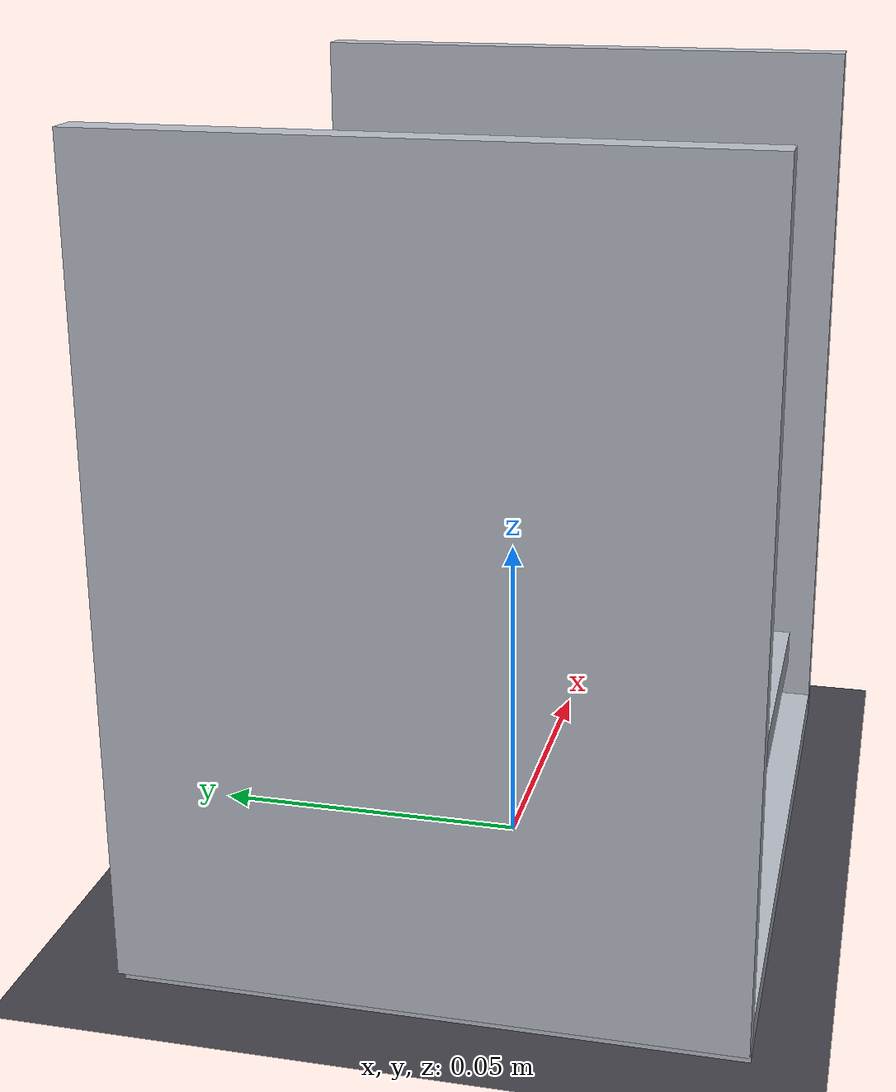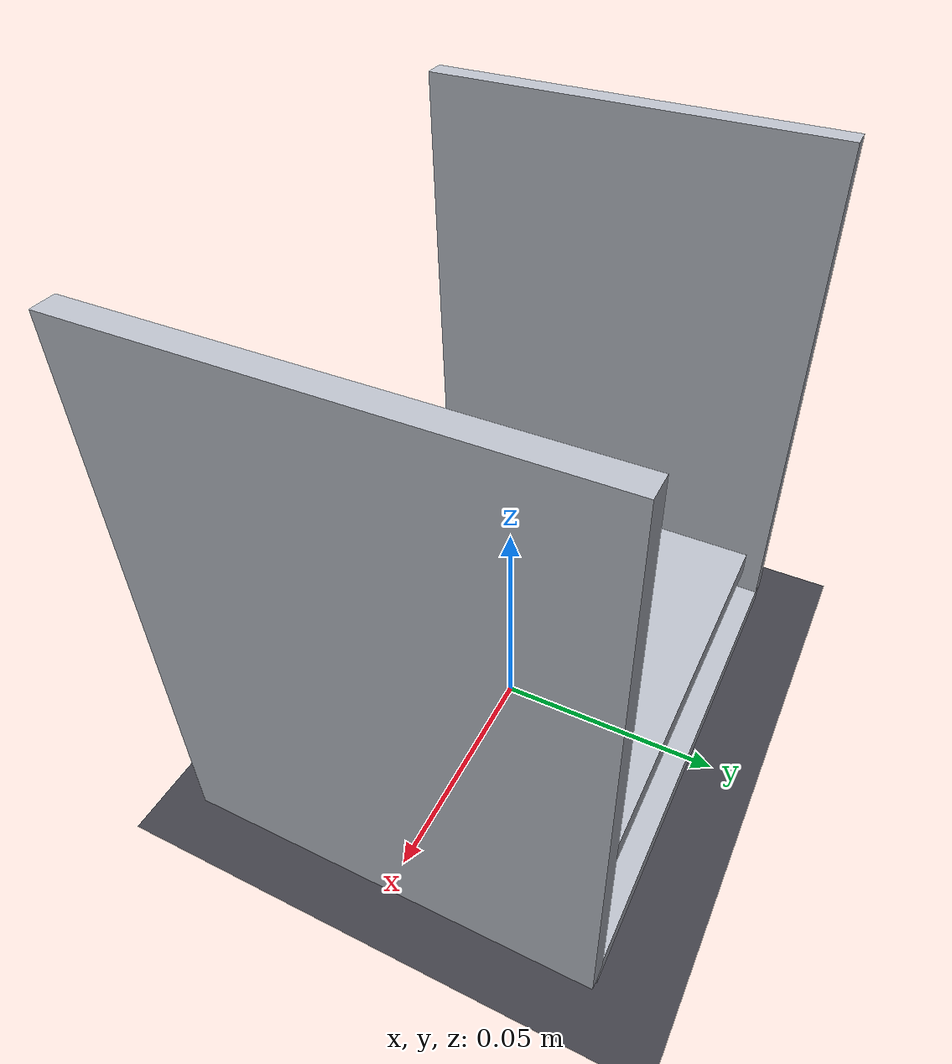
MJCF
<mujoco model="assy_lift">
  <compiler angle="degree"/>
  <option timestep="0.002" gravity="0 0 -9.81" integrator="implicitfast"/>
  <visual><global offwidth="960" offheight="720"/></visual>
  <default><geom rgba="0.72 0.74 0.78 1" friction="0.35 0.005 0.0001"/></default>
  <worldbody>
    <light pos="0.3 -0.3 0.3" dir="-0.4 0.4 -1" diffuse="0.9 0.9 0.9"/>
    <camera name="iso" pos="0.36 -0.36 0.18" xyaxes="0.7 0.7 0 -0.4 0.4 0.8"/>
    <geom name="ground" type="plane" size="1 1 0.01" rgba="0.25 0.25 0.28 1"/>
    <body name="housing" pos="0 0 0.0024">
      <geom name="housing_base" type="box" size="0.055 0.045 0.0024"/>
      <geom name="housing_left" type="box" size="0.0024 0.045 0.06" pos="-0.055 0 0.06"/>
      <geom name="housing_right" type="box" size="0.0024 0.045 0.06" pos="0.055 0 0.06"/>
    </body>
    <body name="platform" pos="0 0 0.0148">
      <joint name="lift" type="slide" axis="0 0 1" range="0 0.09" damping="2.0"
             frictionloss="15.892"/>
      <geom name="platform_plate" type="box" size="0.051000000000000004 0.040999999999999995 0.003" mass="0.08"/>
      <body name="payload" pos="0 0 0.021">
        <geom name="payload_mass" type="box" size="0.0275 0.0225 0.015" mass="1.0"
              rgba="0.85 0.45 0.2 1"/>
      </body>
    </body>
  </worldbody>
  <actuator>
    <position name="lift_drive" joint="lift" kp="6356.8" ctrlrange="0 0.09"
              forcerange="-317.8 317.8"/>
  </actuator>
</mujoco>
